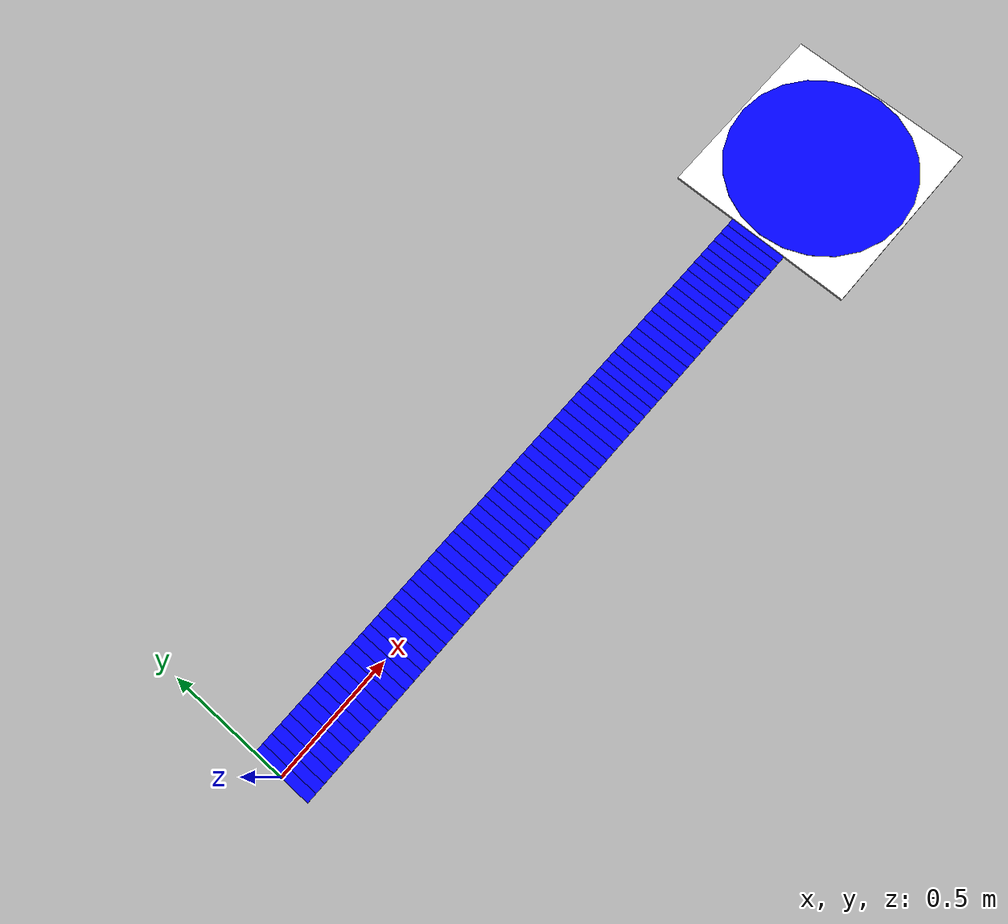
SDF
<?xml version="1.0" ?>
<sdf version="1.10">
  <model name="generated_path">
    <static>true</static>
    <pose>0 0 0 0 0 0</pose>

    <link name="path_segment_0">
      <pose>0.01972303206997084 0.0 9.967201166180758e-05 0 0 0.0</pose>
      <visual name="path_visual_0">
        <geometry>
          <box>
            <size>0.03944606413994168 0.25 0.002</size>
          </box>
        </geometry>
        <material>
          <ambient>0.0 0.0 1.0 1.0</ambient>
          <diffuse>0.0 0.0 1.0 1.0</diffuse>
          <specular>0.0 0.0 1.0 1.0</specular>
        </material>
      </visual>
      <collision name="path_collision_0">
        <geometry>
          <box>
            <size>0.03944606413994168 0.25 0.002</size>
          </box>
        </geometry>
      </collision>
    </link>

    <link name="path_segment_1">
      <pose>0.05995626822157435 0.0 0.0002848032069970846 0 0 0.0</pose>
      <visual name="path_visual_1">
        <geometry>
          <box>
            <size>0.04102040816326533 0.25 0.002</size>
          </box>
        </geometry>
        <material>
          <ambient>0.0 0.0 1.0 1.0</ambient>
          <diffuse>0.0 0.0 1.0 1.0</diffuse>
          <specular>0.0 0.0 1.0 1.0</specular>
        </material>
      </visual>
      <collision name="path_collision_1">
        <geometry>
          <box>
            <size>0.04102040816326533 0.25 0.002</size>
          </box>
        </geometry>
      </collision>
    </link>

    <link name="path_segment_2">
      <pose>0.10163265306122449 0.0 0.0004426020408163266 0 0 0.0</pose>
      <visual name="path_visual_2">
        <geometry>
          <box>
            <size>0.042332361516034964 0.25 0.002</size>
          </box>
        </geometry>
        <material>
          <ambient>0.0 0.0 1.0 1.0</ambient>
          <diffuse>0.0 0.0 1.0 1.0</diffuse>
          <specular>0.0 0.0 1.0 1.0</specular>
        </material>
      </visual>
      <collision name="path_collision_2">
        <geometry>
          <box>
            <size>0.042332361516034964 0.25 0.002</size>
          </box>
        </geometry>
      </collision>
    </link>

    <link name="path_segment_3">
      <pose>0.14448979591836733 0.0 0.0005752551020408163 0 0 0.0</pose>
      <visual name="path_visual_3">
        <geometry>
          <box>
            <size>0.04338192419825071 0.25 0.002</size>
          </box>
        </geometry>
        <material>
          <ambient>0.0 0.0 1.0 1.0</ambient>
          <diffuse>0.0 0.0 1.0 1.0</diffuse>
          <specular>0.0 0.0 1.0 1.0</specular>
        </material>
      </visual>
      <collision name="path_collision_3">
        <geometry>
          <box>
            <size>0.04338192419825071 0.25 0.002</size>
          </box>
        </geometry>
      </collision>
    </link>

    <link name="path_segment_4">
      <pose>0.18826530612244896 0.0 0.0006849489795918368 0 0 0.0</pose>
      <visual name="path_visual_4">
        <geometry>
          <box>
            <size>0.04416909620991252 0.25 0.002</size>
          </box>
        </geometry>
        <material>
          <ambient>0.0 0.0 1.0 1.0</ambient>
          <diffuse>0.0 0.0 1.0 1.0</diffuse>
          <specular>0.0 0.0 1.0 1.0</specular>
        </material>
      </visual>
      <collision name="path_collision_4">
        <geometry>
          <box>
            <size>0.04416909620991252 0.25 0.002</size>
          </box>
        </geometry>
      </collision>
    </link>

    <link name="path_segment_5">
      <pose>0.2326967930029154 0.0 0.0007738702623906706 0 0 0.0</pose>
      <visual name="path_visual_5">
        <geometry>
          <box>
            <size>0.04469387755102039 0.25 0.002</size>
          </box>
        </geometry>
        <material>
          <ambient>0.0 0.0 1.0 1.0</ambient>
          <diffuse>0.0 0.0 1.0 1.0</diffuse>
          <specular>0.0 0.0 1.0 1.0</specular>
        </material>
      </visual>
      <collision name="path_collision_5">
        <geometry>
          <box>
            <size>0.04469387755102039 0.25 0.002</size>
          </box>
        </geometry>
      </collision>
    </link>

    <link name="path_segment_6">
      <pose>0.2775218658892128 0.0 0.0008442055393586005 0 0 0.0</pose>
      <visual name="path_visual_6">
        <geometry>
          <box>
            <size>0.04495626822157439 0.25 0.002</size>
          </box>
        </geometry>
        <material>
          <ambient>0.0 0.0 1.0 1.0</ambient>
          <diffuse>0.0 0.0 1.0 1.0</diffuse>
          <specular>0.0 0.0 1.0 1.0</specular>
        </material>
      </visual>
      <collision name="path_collision_6">
        <geometry>
          <box>
            <size>0.04495626822157439 0.25 0.002</size>
          </box>
        </geometry>
      </collision>
    </link>

    <link name="path_segment_7">
      <pose>0.3224781341107872 0.0 0.0008981413994169098 0 0 0.0</pose>
      <visual name="path_visual_7">
        <geometry>
          <box>
            <size>0.044956268221574336 0.25 0.002</size>
          </box>
        </geometry>
        <material>
          <ambient>0.0 0.0 1.0 1.0</ambient>
          <diffuse>0.0 0.0 1.0 1.0</diffuse>
          <specular>0.0 0.0 1.0 1.0</specular>
        </material>
      </visual>
      <collision name="path_collision_7">
        <geometry>
          <box>
            <size>0.044956268221574336 0.25 0.002</size>
          </box>
        </geometry>
      </collision>
    </link>

    <link name="path_segment_8">
      <pose>0.3673032069970845 0.0 0.0009378644314868806 0 0 0.0</pose>
      <visual name="path_visual_8">
        <geometry>
          <box>
            <size>0.04469387755102039 0.25 0.002</size>
          </box>
        </geometry>
        <material>
          <ambient>0.0 0.0 1.0 1.0</ambient>
          <diffuse>0.0 0.0 1.0 1.0</diffuse>
          <specular>0.0 0.0 1.0 1.0</specular>
        </material>
      </visual>
      <collision name="path_collision_8">
        <geometry>
          <box>
            <size>0.04469387755102039 0.25 0.002</size>
          </box>
        </geometry>
      </collision>
    </link>

    <link name="path_segment_9">
      <pose>0.41173469387755096 0.0 0.000965561224489796 0 0 0.0</pose>
      <visual name="path_visual_9">
        <geometry>
          <box>
            <size>0.044169096209912495 0.25 0.002</size>
          </box>
        </geometry>
        <material>
          <ambient>0.0 0.0 1.0 1.0</ambient>
          <diffuse>0.0 0.0 1.0 1.0</diffuse>
          <specular>0.0 0.0 1.0 1.0</specular>
        </material>
      </visual>
      <collision name="path_collision_9">
        <geometry>
          <box>
            <size>0.044169096209912495 0.25 0.002</size>
          </box>
        </geometry>
      </collision>
    </link>

    <link name="path_segment_10">
      <pose>0.4555102040816326 0.0 0.000983418367346939 0 0 0.0</pose>
      <visual name="path_visual_10">
        <geometry>
          <box>
            <size>0.04338192419825082 0.25 0.002</size>
          </box>
        </geometry>
        <material>
          <ambient>0.0 0.0 1.0 1.0</ambient>
          <diffuse>0.0 0.0 1.0 1.0</diffuse>
          <specular>0.0 0.0 1.0 1.0</specular>
        </material>
      </visual>
      <collision name="path_collision_10">
        <geometry>
          <box>
            <size>0.04338192419825082 0.25 0.002</size>
          </box>
        </geometry>
      </collision>
    </link>

    <link name="path_segment_11">
      <pose>0.4983673469387755 0.0 0.000993622448979592 0 0 0.0</pose>
      <visual name="path_visual_11">
        <geometry>
          <box>
            <size>0.04233236151603492 0.25 0.002</size>
          </box>
        </geometry>
        <material>
          <ambient>0.0 0.0 1.0 1.0</ambient>
          <diffuse>0.0 0.0 1.0 1.0</diffuse>
          <specular>0.0 0.0 1.0 1.0</specular>
        </material>
      </visual>
      <collision name="path_collision_11">
        <geometry>
          <box>
            <size>0.04233236151603492 0.25 0.002</size>
          </box>
        </geometry>
      </collision>
    </link>

    <link name="path_segment_12">
      <pose>0.5400437317784256 0.0 0.000998360058309038 0 0 0.0</pose>
      <visual name="path_visual_12">
        <geometry>
          <box>
            <size>0.04102040816326524 0.25 0.002</size>
          </box>
        </geometry>
        <material>
          <ambient>0.0 0.0 1.0 1.0</ambient>
          <diffuse>0.0 0.0 1.0 1.0</diffuse>
          <specular>0.0 0.0 1.0 1.0</specular>
        </material>
      </visual>
      <collision name="path_collision_12">
        <geometry>
          <box>
            <size>0.04102040816326524 0.25 0.002</size>
          </box>
        </geometry>
      </collision>
    </link>

    <link name="path_segment_13">
      <pose>0.580276967930029 0.0 0.00099981778425656 0 0 0.0</pose>
      <visual name="path_visual_13">
        <geometry>
          <box>
            <size>0.03944606413994178 0.25 0.002</size>
          </box>
        </geometry>
        <material>
          <ambient>0.0 0.0 1.0 1.0</ambient>
          <diffuse>0.0 0.0 1.0 1.0</diffuse>
          <specular>0.0 0.0 1.0 1.0</specular>
        </material>
      </visual>
      <collision name="path_collision_13">
        <geometry>
          <box>
            <size>0.03944606413994178 0.25 0.002</size>
          </box>
        </geometry>
      </collision>
    </link>

    <link name="path_segment_14">
      <pose>0.6197230320699708 0.0 0.001 0 0 0.0</pose>
      <visual name="path_visual_14">
        <geometry>
          <box>
            <size>0.03944606413994167 0.25 0.002</size>
          </box>
        </geometry>
        <material>
          <ambient>0.0 0.0 1.0 1.0</ambient>
          <diffuse>0.0 0.0 1.0 1.0</diffuse>
          <specular>0.0 0.0 1.0 1.0</specular>
        </material>
      </visual>
      <collision name="path_collision_14">
        <geometry>
          <box>
            <size>0.03944606413994167 0.25 0.002</size>
          </box>
        </geometry>
      </collision>
    </link>

    <link name="path_segment_15">
      <pose>0.6599562682215744 0.0 0.0010000000000000002 0 0 0.0</pose>
      <visual name="path_visual_15">
        <geometry>
          <box>
            <size>0.041020408163265465 0.25 0.002</size>
          </box>
        </geometry>
        <material>
          <ambient>0.0 0.0 1.0 1.0</ambient>
          <diffuse>0.0 0.0 1.0 1.0</diffuse>
          <specular>0.0 0.0 1.0 1.0</specular>
        </material>
      </visual>
      <collision name="path_collision_15">
        <geometry>
          <box>
            <size>0.041020408163265465 0.25 0.002</size>
          </box>
        </geometry>
      </collision>
    </link>

    <link name="path_segment_16">
      <pose>0.7016326530612245 0.0 0.001 0 0 0.0</pose>
      <visual name="path_visual_16">
        <geometry>
          <box>
            <size>0.04233236151603481 0.25 0.002</size>
          </box>
        </geometry>
        <material>
          <ambient>0.0 0.0 1.0 1.0</ambient>
          <diffuse>0.0 0.0 1.0 1.0</diffuse>
          <specular>0.0 0.0 1.0 1.0</specular>
        </material>
      </visual>
      <collision name="path_collision_16">
        <geometry>
          <box>
            <size>0.04233236151603481 0.25 0.002</size>
          </box>
        </geometry>
      </collision>
    </link>

    <link name="path_segment_17">
      <pose>0.7444897959183674 0.0 0.001 0 0 0.0</pose>
      <visual name="path_visual_17">
        <geometry>
          <box>
            <size>0.04338192419825082 0.25 0.002</size>
          </box>
        </geometry>
        <material>
          <ambient>0.0 0.0 1.0 1.0</ambient>
          <diffuse>0.0 0.0 1.0 1.0</diffuse>
          <specular>0.0 0.0 1.0 1.0</specular>
        </material>
      </visual>
      <collision name="path_collision_17">
        <geometry>
          <box>
            <size>0.04338192419825082 0.25 0.002</size>
          </box>
        </geometry>
      </collision>
    </link>

    <link name="path_segment_18">
      <pose>0.7882653061224489 0.0 0.001 0 0 0.0</pose>
      <visual name="path_visual_18">
        <geometry>
          <box>
            <size>0.044169096209912384 0.25 0.002</size>
          </box>
        </geometry>
        <material>
          <ambient>0.0 0.0 1.0 1.0</ambient>
          <diffuse>0.0 0.0 1.0 1.0</diffuse>
          <specular>0.0 0.0 1.0 1.0</specular>
        </material>
      </visual>
      <collision name="path_collision_18">
        <geometry>
          <box>
            <size>0.044169096209912384 0.25 0.002</size>
          </box>
        </geometry>
      </collision>
    </link>

    <link name="path_segment_19">
      <pose>0.8326967930029154 0.0 0.001 0 0 0.0</pose>
      <visual name="path_visual_19">
        <geometry>
          <box>
            <size>0.0446938775510205 0.25 0.002</size>
          </box>
        </geometry>
        <material>
          <ambient>0.0 0.0 1.0 1.0</ambient>
          <diffuse>0.0 0.0 1.0 1.0</diffuse>
          <specular>0.0 0.0 1.0 1.0</specular>
        </material>
      </visual>
      <collision name="path_collision_19">
        <geometry>
          <box>
            <size>0.0446938775510205 0.25 0.002</size>
          </box>
        </geometry>
      </collision>
    </link>

    <link name="path_segment_20">
      <pose>0.8775218658892128 0.0 0.001 0 0 0.0</pose>
      <visual name="path_visual_20">
        <geometry>
          <box>
            <size>0.04495626822157439 0.25 0.002</size>
          </box>
        </geometry>
        <material>
          <ambient>0.0 0.0 1.0 1.0</ambient>
          <diffuse>0.0 0.0 1.0 1.0</diffuse>
          <specular>0.0 0.0 1.0 1.0</specular>
        </material>
      </visual>
      <collision name="path_collision_20">
        <geometry>
          <box>
            <size>0.04495626822157439 0.25 0.002</size>
          </box>
        </geometry>
      </collision>
    </link>

    <link name="path_segment_21">
      <pose>0.9224781341107873 0.0 0.001 0 0 0.0</pose>
      <visual name="path_visual_21">
        <geometry>
          <box>
            <size>0.04495626822157439 0.25 0.002</size>
          </box>
        </geometry>
        <material>
          <ambient>0.0 0.0 1.0 1.0</ambient>
          <diffuse>0.0 0.0 1.0 1.0</diffuse>
          <specular>0.0 0.0 1.0 1.0</specular>
        </material>
      </visual>
      <collision name="path_collision_21">
        <geometry>
          <box>
            <size>0.04495626822157439 0.25 0.002</size>
          </box>
        </geometry>
      </collision>
    </link>

    <link name="path_segment_22">
      <pose>0.9673032069970846 0.0 0.001 0 0 0.0</pose>
      <visual name="path_visual_22">
        <geometry>
          <box>
            <size>0.04469387755102039 0.25 0.002</size>
          </box>
        </geometry>
        <material>
          <ambient>0.0 0.0 1.0 1.0</ambient>
          <diffuse>0.0 0.0 1.0 1.0</diffuse>
          <specular>0.0 0.0 1.0 1.0</specular>
        </material>
      </visual>
      <collision name="path_collision_22">
        <geometry>
          <box>
            <size>0.04469387755102039 0.25 0.002</size>
          </box>
        </geometry>
      </collision>
    </link>

    <link name="path_segment_23">
      <pose>1.011734693877551 0.0 0.001 0 0 0.0</pose>
      <visual name="path_visual_23">
        <geometry>
          <box>
            <size>0.044169096209912606 0.25 0.002</size>
          </box>
        </geometry>
        <material>
          <ambient>0.0 0.0 1.0 1.0</ambient>
          <diffuse>0.0 0.0 1.0 1.0</diffuse>
          <specular>0.0 0.0 1.0 1.0</specular>
        </material>
      </visual>
      <collision name="path_collision_23">
        <geometry>
          <box>
            <size>0.044169096209912606 0.25 0.002</size>
          </box>
        </geometry>
      </collision>
    </link>

    <link name="path_segment_24">
      <pose>1.0555102040816329 0.0 0.001 0 0 0.0</pose>
      <visual name="path_visual_24">
        <geometry>
          <box>
            <size>0.04338192419825071 0.25 0.002</size>
          </box>
        </geometry>
        <material>
          <ambient>0.0 0.0 1.0 1.0</ambient>
          <diffuse>0.0 0.0 1.0 1.0</diffuse>
          <specular>0.0 0.0 1.0 1.0</specular>
        </material>
      </visual>
      <collision name="path_collision_24">
        <geometry>
          <box>
            <size>0.04338192419825071 0.25 0.002</size>
          </box>
        </geometry>
      </collision>
    </link>

    <link name="path_segment_25">
      <pose>1.0983673469387756 0.0 0.001 0 0 0.0</pose>
      <visual name="path_visual_25">
        <geometry>
          <box>
            <size>0.04233236151603492 0.25 0.002</size>
          </box>
        </geometry>
        <material>
          <ambient>0.0 0.0 1.0 1.0</ambient>
          <diffuse>0.0 0.0 1.0 1.0</diffuse>
          <specular>0.0 0.0 1.0 1.0</specular>
        </material>
      </visual>
      <collision name="path_collision_25">
        <geometry>
          <box>
            <size>0.04233236151603492 0.25 0.002</size>
          </box>
        </geometry>
      </collision>
    </link>

    <link name="path_segment_26">
      <pose>1.1400437317784258 0.0 0.001 0 0 0.0</pose>
      <visual name="path_visual_26">
        <geometry>
          <box>
            <size>0.04102040816326524 0.25 0.002</size>
          </box>
        </geometry>
        <material>
          <ambient>0.0 0.0 1.0 1.0</ambient>
          <diffuse>0.0 0.0 1.0 1.0</diffuse>
          <specular>0.0 0.0 1.0 1.0</specular>
        </material>
      </visual>
      <collision name="path_collision_26">
        <geometry>
          <box>
            <size>0.04102040816326524 0.25 0.002</size>
          </box>
        </geometry>
      </collision>
    </link>

    <link name="path_segment_27">
      <pose>1.1802769679300291 0.0 0.001 0 0 0.0</pose>
      <visual name="path_visual_27">
        <geometry>
          <box>
            <size>0.03944606413994167 0.25 0.002</size>
          </box>
        </geometry>
        <material>
          <ambient>0.0 0.0 1.0 1.0</ambient>
          <diffuse>0.0 0.0 1.0 1.0</diffuse>
          <specular>0.0 0.0 1.0 1.0</specular>
        </material>
      </visual>
      <collision name="path_collision_27">
        <geometry>
          <box>
            <size>0.03944606413994167 0.25 0.002</size>
          </box>
        </geometry>
      </collision>
    </link>

    <link name="path_segment_28">
      <pose>1.2197230320699708 0.0 0.001 0 0 0.0</pose>
      <visual name="path_visual_28">
        <geometry>
          <box>
            <size>0.03944606413994167 0.25 0.002</size>
          </box>
        </geometry>
        <material>
          <ambient>0.0 0.0 1.0 1.0</ambient>
          <diffuse>0.0 0.0 1.0 1.0</diffuse>
          <specular>0.0 0.0 1.0 1.0</specular>
        </material>
      </visual>
      <collision name="path_collision_28">
        <geometry>
          <box>
            <size>0.03944606413994167 0.25 0.002</size>
          </box>
        </geometry>
      </collision>
    </link>

    <link name="path_segment_29">
      <pose>1.2599562682215746 0.0 0.0010000000000000002 0 0 0.0</pose>
      <visual name="path_visual_29">
        <geometry>
          <box>
            <size>0.04102040816326569 0.25 0.002</size>
          </box>
        </geometry>
        <material>
          <ambient>0.0 0.0 1.0 1.0</ambient>
          <diffuse>0.0 0.0 1.0 1.0</diffuse>
          <specular>0.0 0.0 1.0 1.0</specular>
        </material>
      </visual>
      <collision name="path_collision_29">
        <geometry>
          <box>
            <size>0.04102040816326569 0.25 0.002</size>
          </box>
        </geometry>
      </collision>
    </link>

    <link name="path_segment_30">
      <pose>1.3016326530612246 0.0 0.001 0 0 0.0</pose>
      <visual name="path_visual_30">
        <geometry>
          <box>
            <size>0.04233236151603448 0.25 0.002</size>
          </box>
        </geometry>
        <material>
          <ambient>0.0 0.0 1.0 1.0</ambient>
          <diffuse>0.0 0.0 1.0 1.0</diffuse>
          <specular>0.0 0.0 1.0 1.0</specular>
        </material>
      </visual>
      <collision name="path_collision_30">
        <geometry>
          <box>
            <size>0.04233236151603448 0.25 0.002</size>
          </box>
        </geometry>
      </collision>
    </link>

    <link name="path_segment_31">
      <pose>1.3444897959183673 0.0 0.001 0 0 0.0</pose>
      <visual name="path_visual_31">
        <geometry>
          <box>
            <size>0.04338192419825093 0.25 0.002</size>
          </box>
        </geometry>
        <material>
          <ambient>0.0 0.0 1.0 1.0</ambient>
          <diffuse>0.0 0.0 1.0 1.0</diffuse>
          <specular>0.0 0.0 1.0 1.0</specular>
        </material>
      </visual>
      <collision name="path_collision_31">
        <geometry>
          <box>
            <size>0.04338192419825093 0.25 0.002</size>
          </box>
        </geometry>
      </collision>
    </link>

    <link name="path_segment_32">
      <pose>1.3882653061224488 0.0 0.001 0 0 0.0</pose>
      <visual name="path_visual_32">
        <geometry>
          <box>
            <size>0.04416909620991216 0.25 0.002</size>
          </box>
        </geometry>
        <material>
          <ambient>0.0 0.0 1.0 1.0</ambient>
          <diffuse>0.0 0.0 1.0 1.0</diffuse>
          <specular>0.0 0.0 1.0 1.0</specular>
        </material>
      </visual>
      <collision name="path_collision_32">
        <geometry>
          <box>
            <size>0.04416909620991216 0.25 0.002</size>
          </box>
        </geometry>
      </collision>
    </link>

    <link name="path_segment_33">
      <pose>1.432696793002915 0.0 0.001 0 0 0.0</pose>
      <visual name="path_visual_33">
        <geometry>
          <box>
            <size>0.04469387755102039 0.25 0.002</size>
          </box>
        </geometry>
        <material>
          <ambient>0.0 0.0 1.0 1.0</ambient>
          <diffuse>0.0 0.0 1.0 1.0</diffuse>
          <specular>0.0 0.0 1.0 1.0</specular>
        </material>
      </visual>
      <collision name="path_collision_33">
        <geometry>
          <box>
            <size>0.04469387755102039 0.25 0.002</size>
          </box>
        </geometry>
      </collision>
    </link>

    <link name="path_segment_34">
      <pose>1.4775218658892126 0.0 0.001 0 0 0.0</pose>
      <visual name="path_visual_34">
        <geometry>
          <box>
            <size>0.044956268221574724 0.25 0.002</size>
          </box>
        </geometry>
        <material>
          <ambient>0.0 0.0 1.0 1.0</ambient>
          <diffuse>0.0 0.0 1.0 1.0</diffuse>
          <specular>0.0 0.0 1.0 1.0</specular>
        </material>
      </visual>
      <collision name="path_collision_34">
        <geometry>
          <box>
            <size>0.044956268221574724 0.25 0.002</size>
          </box>
        </geometry>
      </collision>
    </link>

    <link name="path_segment_35">
      <pose>1.5224781341107871 0.0 0.001 0 0 0.0</pose>
      <visual name="path_visual_35">
        <geometry>
          <box>
            <size>0.04495626822157428 0.25 0.002</size>
          </box>
        </geometry>
        <material>
          <ambient>0.0 0.0 1.0 1.0</ambient>
          <diffuse>0.0 0.0 1.0 1.0</diffuse>
          <specular>0.0 0.0 1.0 1.0</specular>
        </material>
      </visual>
      <collision name="path_collision_35">
        <geometry>
          <box>
            <size>0.04495626822157428 0.25 0.002</size>
          </box>
        </geometry>
      </collision>
    </link>

    <link name="path_segment_36">
      <pose>1.5673032069970845 0.0 0.001 0 0 0.0</pose>
      <visual name="path_visual_36">
        <geometry>
          <box>
            <size>0.04469387755102039 0.25 0.002</size>
          </box>
        </geometry>
        <material>
          <ambient>0.0 0.0 1.0 1.0</ambient>
          <diffuse>0.0 0.0 1.0 1.0</diffuse>
          <specular>0.0 0.0 1.0 1.0</specular>
        </material>
      </visual>
      <collision name="path_collision_36">
        <geometry>
          <box>
            <size>0.04469387755102039 0.25 0.002</size>
          </box>
        </geometry>
      </collision>
    </link>

    <link name="path_segment_37">
      <pose>1.611734693877551 0.0 0.001 0 0 0.0</pose>
      <visual name="path_visual_37">
        <geometry>
          <box>
            <size>0.044169096209912606 0.25 0.002</size>
          </box>
        </geometry>
        <material>
          <ambient>0.0 0.0 1.0 1.0</ambient>
          <diffuse>0.0 0.0 1.0 1.0</diffuse>
          <specular>0.0 0.0 1.0 1.0</specular>
        </material>
      </visual>
      <collision name="path_collision_37">
        <geometry>
          <box>
            <size>0.044169096209912606 0.25 0.002</size>
          </box>
        </geometry>
      </collision>
    </link>

    <link name="path_segment_38">
      <pose>1.6555102040816325 0.0 0.001 0 0 0.0</pose>
      <visual name="path_visual_38">
        <geometry>
          <box>
            <size>0.04338192419825049 0.25 0.002</size>
          </box>
        </geometry>
        <material>
          <ambient>0.0 0.0 1.0 1.0</ambient>
          <diffuse>0.0 0.0 1.0 1.0</diffuse>
          <specular>0.0 0.0 1.0 1.0</specular>
        </material>
      </visual>
      <collision name="path_collision_38">
        <geometry>
          <box>
            <size>0.04338192419825049 0.25 0.002</size>
          </box>
        </geometry>
      </collision>
    </link>

    <link name="path_segment_39">
      <pose>1.6983673469387752 0.0 0.001 0 0 0.0</pose>
      <visual name="path_visual_39">
        <geometry>
          <box>
            <size>0.04233236151603492 0.25 0.002</size>
          </box>
        </geometry>
        <material>
          <ambient>0.0 0.0 1.0 1.0</ambient>
          <diffuse>0.0 0.0 1.0 1.0</diffuse>
          <specular>0.0 0.0 1.0 1.0</specular>
        </material>
      </visual>
      <collision name="path_collision_39">
        <geometry>
          <box>
            <size>0.04233236151603492 0.25 0.002</size>
          </box>
        </geometry>
      </collision>
    </link>

    <link name="path_segment_40">
      <pose>1.7400437317784254 0.0 0.001 0 0 0.0</pose>
      <visual name="path_visual_40">
        <geometry>
          <box>
            <size>0.041020408163265465 0.25 0.002</size>
          </box>
        </geometry>
        <material>
          <ambient>0.0 0.0 1.0 1.0</ambient>
          <diffuse>0.0 0.0 1.0 1.0</diffuse>
          <specular>0.0 0.0 1.0 1.0</specular>
        </material>
      </visual>
      <collision name="path_collision_40">
        <geometry>
          <box>
            <size>0.041020408163265465 0.25 0.002</size>
          </box>
        </geometry>
      </collision>
    </link>

    <link name="path_segment_41">
      <pose>1.780276967930029 0.0 0.001 0 0 0.0</pose>
      <visual name="path_visual_41">
        <geometry>
          <box>
            <size>0.03944606413994167 0.25 0.002</size>
          </box>
        </geometry>
        <material>
          <ambient>0.0 0.0 1.0 1.0</ambient>
          <diffuse>0.0 0.0 1.0 1.0</diffuse>
          <specular>0.0 0.0 1.0 1.0</specular>
        </material>
      </visual>
      <collision name="path_collision_41">
        <geometry>
          <box>
            <size>0.03944606413994167 0.25 0.002</size>
          </box>
        </geometry>
      </collision>
    </link>

    <link name="path_segment_42">
      <pose>1.8197230320699707 0.0 0.001 0 0 0.0</pose>
      <visual name="path_visual_42">
        <geometry>
          <box>
            <size>0.03944606413994167 0.25 0.002</size>
          </box>
        </geometry>
        <material>
          <ambient>0.0 0.0 1.0 1.0</ambient>
          <diffuse>0.0 0.0 1.0 1.0</diffuse>
          <specular>0.0 0.0 1.0 1.0</specular>
        </material>
      </visual>
      <collision name="path_collision_42">
        <geometry>
          <box>
            <size>0.03944606413994167 0.25 0.002</size>
          </box>
        </geometry>
      </collision>
    </link>

    <link name="path_segment_43">
      <pose>1.8599562682215742 0.0 0.0010000000000000002 0 0 0.0</pose>
      <visual name="path_visual_43">
        <geometry>
          <box>
            <size>0.04102040816326569 0.25 0.002</size>
          </box>
        </geometry>
        <material>
          <ambient>0.0 0.0 1.0 1.0</ambient>
          <diffuse>0.0 0.0 1.0 1.0</diffuse>
          <specular>0.0 0.0 1.0 1.0</specular>
        </material>
      </visual>
      <collision name="path_collision_43">
        <geometry>
          <box>
            <size>0.04102040816326569 0.25 0.002</size>
          </box>
        </geometry>
      </collision>
    </link>

    <link name="path_segment_44">
      <pose>1.9016326530612244 0.0 0.001 0 0 0.0</pose>
      <visual name="path_visual_44">
        <geometry>
          <box>
            <size>0.04233236151603448 0.25 0.002</size>
          </box>
        </geometry>
        <material>
          <ambient>0.0 0.0 1.0 1.0</ambient>
          <diffuse>0.0 0.0 1.0 1.0</diffuse>
          <specular>0.0 0.0 1.0 1.0</specular>
        </material>
      </visual>
      <collision name="path_collision_44">
        <geometry>
          <box>
            <size>0.04233236151603448 0.25 0.002</size>
          </box>
        </geometry>
      </collision>
    </link>

    <link name="path_segment_45">
      <pose>1.9444897959183671 0.0 0.001 0 0 0.0</pose>
      <visual name="path_visual_45">
        <geometry>
          <box>
            <size>0.04338192419825093 0.25 0.002</size>
          </box>
        </geometry>
        <material>
          <ambient>0.0 0.0 1.0 1.0</ambient>
          <diffuse>0.0 0.0 1.0 1.0</diffuse>
          <specular>0.0 0.0 1.0 1.0</specular>
        </material>
      </visual>
      <collision name="path_collision_45">
        <geometry>
          <box>
            <size>0.04338192419825093 0.25 0.002</size>
          </box>
        </geometry>
      </collision>
    </link>

    <link name="path_segment_46">
      <pose>1.988265306122449 0.0 0.001 0 0 0.0</pose>
      <visual name="path_visual_46">
        <geometry>
          <box>
            <size>0.044169096209912384 0.25 0.002</size>
          </box>
        </geometry>
        <material>
          <ambient>0.0 0.0 1.0 1.0</ambient>
          <diffuse>0.0 0.0 1.0 1.0</diffuse>
          <specular>0.0 0.0 1.0 1.0</specular>
        </material>
      </visual>
      <collision name="path_collision_46">
        <geometry>
          <box>
            <size>0.044169096209912384 0.25 0.002</size>
          </box>
        </geometry>
      </collision>
    </link>

    <link name="path_segment_47">
      <pose>2.0326967930029154 0.0 0.001 0 0 0.0</pose>
      <visual name="path_visual_47">
        <geometry>
          <box>
            <size>0.04469387755102039 0.25 0.002</size>
          </box>
        </geometry>
        <material>
          <ambient>0.0 0.0 1.0 1.0</ambient>
          <diffuse>0.0 0.0 1.0 1.0</diffuse>
          <specular>0.0 0.0 1.0 1.0</specular>
        </material>
      </visual>
      <collision name="path_collision_47">
        <geometry>
          <box>
            <size>0.04469387755102039 0.25 0.002</size>
          </box>
        </geometry>
      </collision>
    </link>

    <link name="path_segment_48">
      <pose>2.0775218658892127 0.0 0.001 0 0 0.0</pose>
      <visual name="path_visual_48">
        <geometry>
          <box>
            <size>0.04495626822157428 0.25 0.002</size>
          </box>
        </geometry>
        <material>
          <ambient>0.0 0.0 1.0 1.0</ambient>
          <diffuse>0.0 0.0 1.0 1.0</diffuse>
          <specular>0.0 0.0 1.0 1.0</specular>
        </material>
      </visual>
      <collision name="path_collision_48">
        <geometry>
          <box>
            <size>0.04495626822157428 0.25 0.002</size>
          </box>
        </geometry>
      </collision>
    </link>

    <link name="path_segment_49">
      <pose>2.122478134110787 0.0 0.001 0 0 0.0</pose>
      <visual name="path_visual_49">
        <geometry>
          <box>
            <size>0.044956268221574724 0.25 0.002</size>
          </box>
        </geometry>
        <material>
          <ambient>0.0 0.0 1.0 1.0</ambient>
          <diffuse>0.0 0.0 1.0 1.0</diffuse>
          <specular>0.0 0.0 1.0 1.0</specular>
        </material>
      </visual>
      <collision name="path_collision_49">
        <geometry>
          <box>
            <size>0.044956268221574724 0.25 0.002</size>
          </box>
        </geometry>
      </collision>
    </link>

    <link name="path_segment_50">
      <pose>2.167303206997085 0.0 0.001 0 0 0.0</pose>
      <visual name="path_visual_50">
        <geometry>
          <box>
            <size>0.04469387755102039 0.25 0.002</size>
          </box>
        </geometry>
        <material>
          <ambient>0.0 0.0 1.0 1.0</ambient>
          <diffuse>0.0 0.0 1.0 1.0</diffuse>
          <specular>0.0 0.0 1.0 1.0</specular>
        </material>
      </visual>
      <collision name="path_collision_50">
        <geometry>
          <box>
            <size>0.04469387755102039 0.25 0.002</size>
          </box>
        </geometry>
      </collision>
    </link>

    <link name="path_segment_51">
      <pose>2.211734693877551 0.0 0.001 0 0 0.0</pose>
      <visual name="path_visual_51">
        <geometry>
          <box>
            <size>0.044169096209912606 0.25 0.002</size>
          </box>
        </geometry>
        <material>
          <ambient>0.0 0.0 1.0 1.0</ambient>
          <diffuse>0.0 0.0 1.0 1.0</diffuse>
          <specular>0.0 0.0 1.0 1.0</specular>
        </material>
      </visual>
      <collision name="path_collision_51">
        <geometry>
          <box>
            <size>0.044169096209912606 0.25 0.002</size>
          </box>
        </geometry>
      </collision>
    </link>

    <link name="path_segment_52">
      <pose>2.2555102040816326 0.0 0.001 0 0 0.0</pose>
      <visual name="path_visual_52">
        <geometry>
          <box>
            <size>0.04338192419825049 0.25 0.002</size>
          </box>
        </geometry>
        <material>
          <ambient>0.0 0.0 1.0 1.0</ambient>
          <diffuse>0.0 0.0 1.0 1.0</diffuse>
          <specular>0.0 0.0 1.0 1.0</specular>
        </material>
      </visual>
      <collision name="path_collision_52">
        <geometry>
          <box>
            <size>0.04338192419825049 0.25 0.002</size>
          </box>
        </geometry>
      </collision>
    </link>

    <link name="path_segment_53">
      <pose>2.2983673469387753 0.0 0.001 0 0 0.0</pose>
      <visual name="path_visual_53">
        <geometry>
          <box>
            <size>0.04233236151603492 0.25 0.002</size>
          </box>
        </geometry>
        <material>
          <ambient>0.0 0.0 1.0 1.0</ambient>
          <diffuse>0.0 0.0 1.0 1.0</diffuse>
          <specular>0.0 0.0 1.0 1.0</specular>
        </material>
      </visual>
      <collision name="path_collision_53">
        <geometry>
          <box>
            <size>0.04233236151603492 0.25 0.002</size>
          </box>
        </geometry>
      </collision>
    </link>

    <link name="path_segment_54">
      <pose>2.3400437317784255 0.0 0.001 0 0 0.0</pose>
      <visual name="path_visual_54">
        <geometry>
          <box>
            <size>0.041020408163265465 0.25 0.002</size>
          </box>
        </geometry>
        <material>
          <ambient>0.0 0.0 1.0 1.0</ambient>
          <diffuse>0.0 0.0 1.0 1.0</diffuse>
          <specular>0.0 0.0 1.0 1.0</specular>
        </material>
      </visual>
      <collision name="path_collision_54">
        <geometry>
          <box>
            <size>0.041020408163265465 0.25 0.002</size>
          </box>
        </geometry>
      </collision>
    </link>

    <link name="path_segment_55">
      <pose>2.380276967930029 0.0 0.001 0 0 0.0</pose>
      <visual name="path_visual_55">
        <geometry>
          <box>
            <size>0.03944606413994167 0.25 0.002</size>
          </box>
        </geometry>
        <material>
          <ambient>0.0 0.0 1.0 1.0</ambient>
          <diffuse>0.0 0.0 1.0 1.0</diffuse>
          <specular>0.0 0.0 1.0 1.0</specular>
        </material>
      </visual>
      <collision name="path_collision_55">
        <geometry>
          <box>
            <size>0.03944606413994167 0.25 0.002</size>
          </box>
        </geometry>
      </collision>
    </link>

    <link name="path_segment_56">
      <pose>2.419723032069971 0.0 0.001 0 0 0.0</pose>
      <visual name="path_visual_56">
        <geometry>
          <box>
            <size>0.03944606413994167 0.25 0.002</size>
          </box>
        </geometry>
        <material>
          <ambient>0.0 0.0 1.0 1.0</ambient>
          <diffuse>0.0 0.0 1.0 1.0</diffuse>
          <specular>0.0 0.0 1.0 1.0</specular>
        </material>
      </visual>
      <collision name="path_collision_56">
        <geometry>
          <box>
            <size>0.03944606413994167 0.25 0.002</size>
          </box>
        </geometry>
      </collision>
    </link>

    <link name="path_segment_57">
      <pose>2.4599562682215743 0.0 0.0010000000000000002 0 0 0.0</pose>
      <visual name="path_visual_57">
        <geometry>
          <box>
            <size>0.041020408163265465 0.25 0.002</size>
          </box>
        </geometry>
        <material>
          <ambient>0.0 0.0 1.0 1.0</ambient>
          <diffuse>0.0 0.0 1.0 1.0</diffuse>
          <specular>0.0 0.0 1.0 1.0</specular>
        </material>
      </visual>
      <collision name="path_collision_57">
        <geometry>
          <box>
            <size>0.041020408163265465 0.25 0.002</size>
          </box>
        </geometry>
      </collision>
    </link>

    <link name="path_segment_58">
      <pose>2.5016326530612245 0.0 0.001 0 0 0.0</pose>
      <visual name="path_visual_58">
        <geometry>
          <box>
            <size>0.04233236151603492 0.25 0.002</size>
          </box>
        </geometry>
        <material>
          <ambient>0.0 0.0 1.0 1.0</ambient>
          <diffuse>0.0 0.0 1.0 1.0</diffuse>
          <specular>0.0 0.0 1.0 1.0</specular>
        </material>
      </visual>
      <collision name="path_collision_58">
        <geometry>
          <box>
            <size>0.04233236151603492 0.25 0.002</size>
          </box>
        </geometry>
      </collision>
    </link>

    <link name="path_segment_59">
      <pose>2.544489795918367 0.0 0.001 0 0 0.0</pose>
      <visual name="path_visual_59">
        <geometry>
          <box>
            <size>0.04338192419825093 0.25 0.002</size>
          </box>
        </geometry>
        <material>
          <ambient>0.0 0.0 1.0 1.0</ambient>
          <diffuse>0.0 0.0 1.0 1.0</diffuse>
          <specular>0.0 0.0 1.0 1.0</specular>
        </material>
      </visual>
      <collision name="path_collision_59">
        <geometry>
          <box>
            <size>0.04338192419825093 0.25 0.002</size>
          </box>
        </geometry>
      </collision>
    </link>

    <link name="path_segment_60">
      <pose>2.588265306122449 0.0 0.001 0 0 0.0</pose>
      <visual name="path_visual_60">
        <geometry>
          <box>
            <size>0.04416909620991216 0.25 0.002</size>
          </box>
        </geometry>
        <material>
          <ambient>0.0 0.0 1.0 1.0</ambient>
          <diffuse>0.0 0.0 1.0 1.0</diffuse>
          <specular>0.0 0.0 1.0 1.0</specular>
        </material>
      </visual>
      <collision name="path_collision_60">
        <geometry>
          <box>
            <size>0.04416909620991216 0.25 0.002</size>
          </box>
        </geometry>
      </collision>
    </link>

    <link name="path_segment_61">
      <pose>2.632696793002915 0.0 0.001 0 0 0.0</pose>
      <visual name="path_visual_61">
        <geometry>
          <box>
            <size>0.04469387755102039 0.25 0.002</size>
          </box>
        </geometry>
        <material>
          <ambient>0.0 0.0 1.0 1.0</ambient>
          <diffuse>0.0 0.0 1.0 1.0</diffuse>
          <specular>0.0 0.0 1.0 1.0</specular>
        </material>
      </visual>
      <collision name="path_collision_61">
        <geometry>
          <box>
            <size>0.04469387755102039 0.25 0.002</size>
          </box>
        </geometry>
      </collision>
    </link>

    <link name="path_segment_62">
      <pose>2.677521865889213 0.0 0.001 0 0 0.0</pose>
      <visual name="path_visual_62">
        <geometry>
          <box>
            <size>0.044956268221574724 0.25 0.002</size>
          </box>
        </geometry>
        <material>
          <ambient>0.0 0.0 1.0 1.0</ambient>
          <diffuse>0.0 0.0 1.0 1.0</diffuse>
          <specular>0.0 0.0 1.0 1.0</specular>
        </material>
      </visual>
      <collision name="path_collision_62">
        <geometry>
          <box>
            <size>0.044956268221574724 0.25 0.002</size>
          </box>
        </geometry>
      </collision>
    </link>

    <link name="path_segment_63">
      <pose>2.722478134110787 0.0 0.001 0 0 0.0</pose>
      <visual name="path_visual_63">
        <geometry>
          <box>
            <size>0.04495626822157428 0.25 0.002</size>
          </box>
        </geometry>
        <material>
          <ambient>0.0 0.0 1.0 1.0</ambient>
          <diffuse>0.0 0.0 1.0 1.0</diffuse>
          <specular>0.0 0.0 1.0 1.0</specular>
        </material>
      </visual>
      <collision name="path_collision_63">
        <geometry>
          <box>
            <size>0.04495626822157428 0.25 0.002</size>
          </box>
        </geometry>
      </collision>
    </link>

    <link name="path_segment_64">
      <pose>2.7673032069970844 0.0 0.001 0 0 0.0</pose>
      <visual name="path_visual_64">
        <geometry>
          <box>
            <size>0.04469387755102039 0.25 0.002</size>
          </box>
        </geometry>
        <material>
          <ambient>0.0 0.0 1.0 1.0</ambient>
          <diffuse>0.0 0.0 1.0 1.0</diffuse>
          <specular>0.0 0.0 1.0 1.0</specular>
        </material>
      </visual>
      <collision name="path_collision_64">
        <geometry>
          <box>
            <size>0.04469387755102039 0.25 0.002</size>
          </box>
        </geometry>
      </collision>
    </link>

    <link name="path_segment_65">
      <pose>2.8117346938775514 0.0 0.001 0 0 0.0</pose>
      <visual name="path_visual_65">
        <geometry>
          <box>
            <size>0.044169096209912606 0.25 0.002</size>
          </box>
        </geometry>
        <material>
          <ambient>0.0 0.0 1.0 1.0</ambient>
          <diffuse>0.0 0.0 1.0 1.0</diffuse>
          <specular>0.0 0.0 1.0 1.0</specular>
        </material>
      </visual>
      <collision name="path_collision_65">
        <geometry>
          <box>
            <size>0.044169096209912606 0.25 0.002</size>
          </box>
        </geometry>
      </collision>
    </link>

    <link name="path_segment_66">
      <pose>2.8555102040816327 0.0 0.001 0 0 0.0</pose>
      <visual name="path_visual_66">
        <geometry>
          <box>
            <size>0.04338192419825049 0.25 0.002</size>
          </box>
        </geometry>
        <material>
          <ambient>0.0 0.0 1.0 1.0</ambient>
          <diffuse>0.0 0.0 1.0 1.0</diffuse>
          <specular>0.0 0.0 1.0 1.0</specular>
        </material>
      </visual>
      <collision name="path_collision_66">
        <geometry>
          <box>
            <size>0.04338192419825049 0.25 0.002</size>
          </box>
        </geometry>
      </collision>
    </link>

    <link name="path_segment_67">
      <pose>2.898367346938776 0.0 0.001 0 0 0.0</pose>
      <visual name="path_visual_67">
        <geometry>
          <box>
            <size>0.042332361516035366 0.25 0.002</size>
          </box>
        </geometry>
        <material>
          <ambient>0.0 0.0 1.0 1.0</ambient>
          <diffuse>0.0 0.0 1.0 1.0</diffuse>
          <specular>0.0 0.0 1.0 1.0</specular>
        </material>
      </visual>
      <collision name="path_collision_67">
        <geometry>
          <box>
            <size>0.042332361516035366 0.25 0.002</size>
          </box>
        </geometry>
      </collision>
    </link>

    <link name="path_segment_68">
      <pose>2.9400437317784256 0.0 0.001 0 0 0.0</pose>
      <visual name="path_visual_68">
        <geometry>
          <box>
            <size>0.04102040816326502 0.25 0.002</size>
          </box>
        </geometry>
        <material>
          <ambient>0.0 0.0 1.0 1.0</ambient>
          <diffuse>0.0 0.0 1.0 1.0</diffuse>
          <specular>0.0 0.0 1.0 1.0</specular>
        </material>
      </visual>
      <collision name="path_collision_68">
        <geometry>
          <box>
            <size>0.04102040816326502 0.25 0.002</size>
          </box>
        </geometry>
      </collision>
    </link>

    <link name="path_segment_69">
      <pose>2.9802769679300294 0.0 0.001 0 0 0.0</pose>
      <visual name="path_visual_69">
        <geometry>
          <box>
            <size>0.03944606413994167 0.25 0.002</size>
          </box>
        </geometry>
        <material>
          <ambient>0.0 0.0 1.0 1.0</ambient>
          <diffuse>0.0 0.0 1.0 1.0</diffuse>
          <specular>0.0 0.0 1.0 1.0</specular>
        </material>
      </visual>
      <collision name="path_collision_69">
        <geometry>
          <box>
            <size>0.03944606413994167 0.25 0.002</size>
          </box>
        </geometry>
      </collision>
    </link>

    <include>
      <uri>model://sae/plataforma_com_circulo</uri>
      <pose>3.0 0.0 0.001 0 0 0</pose>
    </include>

  </model>
</sdf>

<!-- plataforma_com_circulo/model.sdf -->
<sdf version="1.10">
  <model name="plataforma_com_circulo">
    <static>true</static>
    <pose>0 0 0.005 0 0 0</pose> <!-- levemente acima do solo -->
    <link name="link">

      <!-- Base branca (quadrado) -->
      <visual name="base">
        <pose>0 0 0 0 0 0</pose>
        <geometry>
          <box>
            <size>0.8 0.8 0.01</size>
          </box>
        </geometry>
        <material>
          <ambient>1 1 1 1</ambient>
          <diffuse>1 1 1 1</diffuse>
        </material>
      </visual>

      <!-- Círculo azul por cima -->
      <visual name="circle">
        <pose>0 0 0.011 0 0 0</pose> <!-- ligeiramente acima da base -->
        <geometry>
          <cylinder>
            <radius>0.39</radius> <!-- ajustável -->
            <length>0.001</length>
          </cylinder>
        </geometry>
        <material>
          <ambient>0 0 1 1</ambient>
          <diffuse>0 0 1 1</diffuse>
        </material>
      </visual>

    </link>
  </model>
</sdf>
